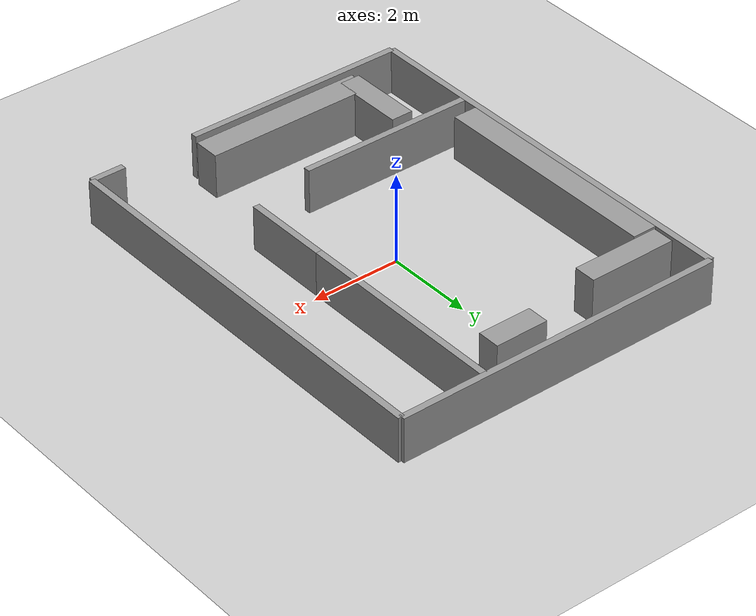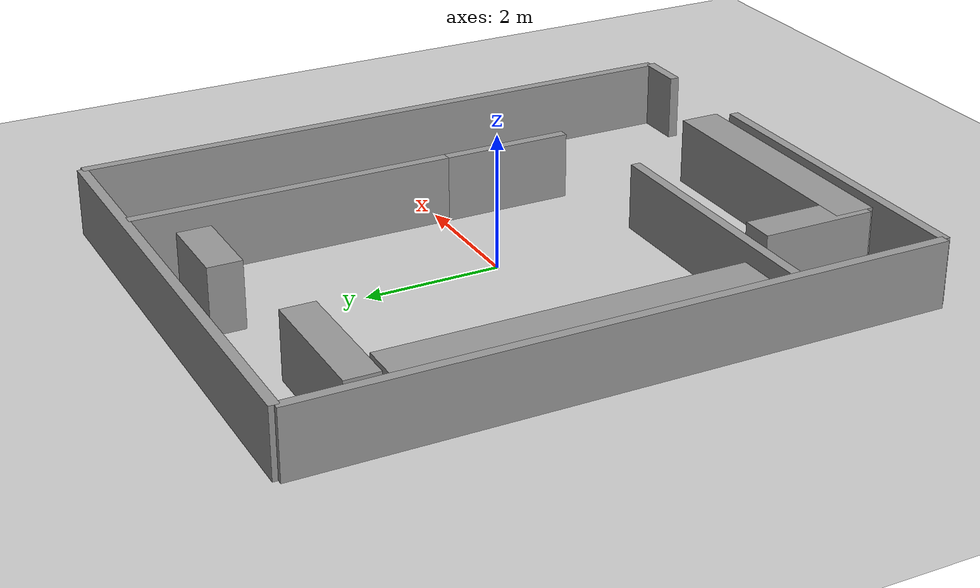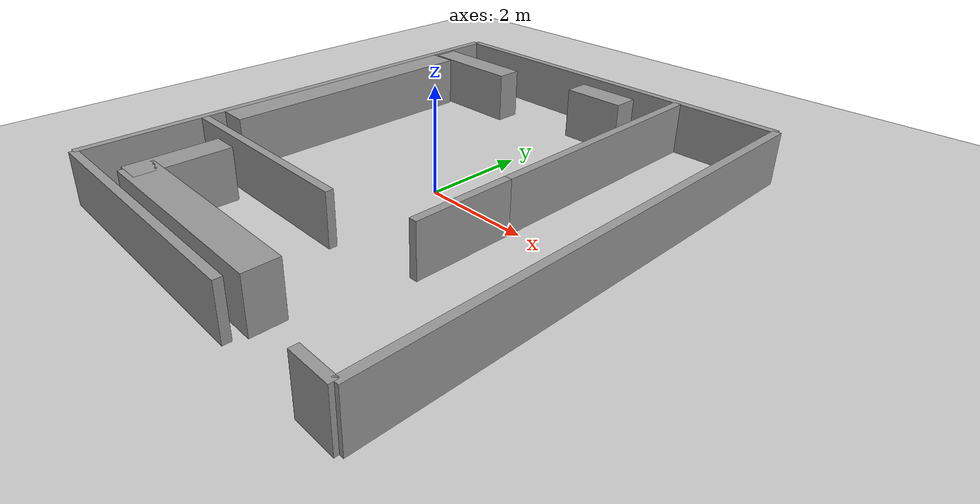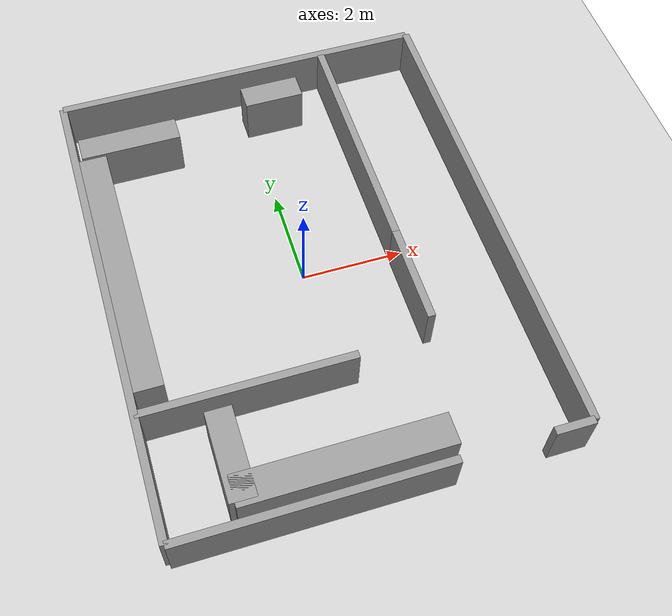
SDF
<?xml version="1.0" ?>
<sdf version="1.6">
  <world name="lab">
    <include><uri>model://sun</uri></include>
    <include><uri>model://ground_plane</uri></include>
    <physics name="default_physics" default="true" type="ode">
      <max_step_size>0.001</max_step_size><real_time_factor>1.0</real_time_factor><real_time_update_rate>1000</real_time_update_rate>
    </physics>
    <scene><ambient>0.4 0.4 0.4 1</ambient><background>0.7 0.7 0.7 1</background><shadows>false</shadows></scene>
    <model name="lab_obstacles"><static>true</static><link name="body">
      <collision name="col_0">
        <pose>0.0000 4.7500 0.5000 0 0 0</pose>
        <geometry><box><size>7.5000 0.1500 1.0000</size></box></geometry>
      </collision>
      <visual name="vis_0">
        <pose>0.0000 4.7500 0.5000 0 0 0</pose>
        <geometry><box><size>7.5000 0.1500 1.0000</size></box></geometry>
        <material><script><uri>file://media/materials/scripts/gazebo.material</uri><name>Gazebo/Grey</name></script></material>
      </visual>
      <collision name="col_1">
        <pose>-1.2250 -4.7500 0.5000 0 0 0</pose>
        <geometry><box><size>5.0500 0.1500 1.0000</size></box></geometry>
      </collision>
      <visual name="vis_1">
        <pose>-1.2250 -4.7500 0.5000 0 0 0</pose>
        <geometry><box><size>5.0500 0.1500 1.0000</size></box></geometry>
        <material><script><uri>file://media/materials/scripts/gazebo.material</uri><name>Gazebo/Grey</name></script></material>
      </visual>
      <collision name="col_2">
        <pose>3.3750 -4.7500 0.5000 0 0 0</pose>
        <geometry><box><size>0.7500 0.1500 1.0000</size></box></geometry>
      </collision>
      <visual name="vis_2">
        <pose>3.3750 -4.7500 0.5000 0 0 0</pose>
        <geometry><box><size>0.7500 0.1500 1.0000</size></box></geometry>
        <material><script><uri>file://media/materials/scripts/gazebo.material</uri><name>Gazebo/Grey</name></script></material>
      </visual>
      <collision name="col_3">
        <pose>3.7500 0.0000 0.5000 0 0 0</pose>
        <geometry><box><size>0.1500 9.5000 1.0000</size></box></geometry>
      </collision>
      <visual name="vis_3">
        <pose>3.7500 0.0000 0.5000 0 0 0</pose>
        <geometry><box><size>0.1500 9.5000 1.0000</size></box></geometry>
        <material><script><uri>file://media/materials/scripts/gazebo.material</uri><name>Gazebo/Grey</name></script></material>
      </visual>
      <collision name="col_4">
        <pose>-3.7500 0.0000 0.5000 0 0 0</pose>
        <geometry><box><size>0.1500 9.5000 1.0000</size></box></geometry>
      </collision>
      <visual name="vis_4">
        <pose>-3.7500 0.0000 0.5000 0 0 0</pose>
        <geometry><box><size>0.1500 9.5000 1.0000</size></box></geometry>
        <material><script><uri>file://media/materials/scripts/gazebo.material</uri><name>Gazebo/Grey</name></script></material>
      </visual>
      <collision name="col_5">
        <pose>-2.6000 3.6000 0.5000 0 0 0</pose>
        <geometry><box><size>2.0000 0.5000 1.0000</size></box></geometry>
      </collision>
      <visual name="vis_5">
        <pose>-2.6000 3.6000 0.5000 0 0 0</pose>
        <geometry><box><size>2.0000 0.5000 1.0000</size></box></geometry>
        <material><script><uri>file://media/materials/scripts/gazebo.material</uri><name>Gazebo/Grey</name></script></material>
      </visual>
      <collision name="col_6">
        <pose>0.5000 4.0000 0.5000 0 0 0</pose>
        <geometry><box><size>1.2000 0.5000 1.0000</size></box></geometry>
      </collision>
      <visual name="vis_6">
        <pose>0.5000 4.0000 0.5000 0 0 0</pose>
        <geometry><box><size>1.2000 0.5000 1.0000</size></box></geometry>
        <material><script><uri>file://media/materials/scripts/gazebo.material</uri><name>Gazebo/Grey</name></script></material>
      </visual>
      <collision name="col_7">
        <pose>1.8000 2.3000 0.5000 0 0 0</pose>
        <geometry><box><size>0.1500 4.8000 1.0000</size></box></geometry>
      </collision>
      <visual name="vis_7">
        <pose>1.8000 2.3000 0.5000 0 0 0</pose>
        <geometry><box><size>0.1500 4.8000 1.0000</size></box></geometry>
        <material><script><uri>file://media/materials/scripts/gazebo.material</uri><name>Gazebo/Grey</name></script></material>
      </visual>
      <collision name="col_8">
        <pose>1.8000 -1.0750 0.5000 0 0 0</pose>
        <geometry><box><size>0.1500 1.9500 1.0000</size></box></geometry>
      </collision>
      <visual name="vis_8">
        <pose>1.8000 -1.0750 0.5000 0 0 0</pose>
        <geometry><box><size>0.1500 1.9500 1.0000</size></box></geometry>
        <material><script><uri>file://media/materials/scripts/gazebo.material</uri><name>Gazebo/Grey</name></script></material>
      </visual>
      <collision name="col_9">
        <pose>-1.7250 -2.4000 0.5000 0 0 0</pose>
        <geometry><box><size>4.0500 0.1500 1.0000</size></box></geometry>
      </collision>
      <visual name="vis_9">
        <pose>-1.7250 -2.4000 0.5000 0 0 0</pose>
        <geometry><box><size>4.0500 0.1500 1.0000</size></box></geometry>
        <material><script><uri>file://media/materials/scripts/gazebo.material</uri><name>Gazebo/Grey</name></script></material>
      </visual>
      <collision name="col_10">
        <pose>-3.4000 0.6500 0.5000 0 0 0</pose>
        <geometry><box><size>0.5500 5.3000 1.0000</size></box></geometry>
      </collision>
      <visual name="vis_10">
        <pose>-3.4000 0.6500 0.5000 0 0 0</pose>
        <geometry><box><size>0.5500 5.3000 1.0000</size></box></geometry>
        <material><script><uri>file://media/materials/scripts/gazebo.material</uri><name>Gazebo/Grey</name></script></material>
      </visual>
      <collision name="col_11">
        <pose>-0.5500 -4.2000 0.5000 0 0 0</pose>
        <geometry><box><size>3.9000 0.6000 1.0000</size></box></geometry>
      </collision>
      <visual name="vis_11">
        <pose>-0.5500 -4.2000 0.5000 0 0 0</pose>
        <geometry><box><size>3.9000 0.6000 1.0000</size></box></geometry>
        <material><script><uri>file://media/materials/scripts/gazebo.material</uri><name>Gazebo/Grey</name></script></material>
      </visual>
      <collision name="col_12">
        <pose>-2.3500 -3.5500 0.5000 0 0 0</pose>
        <geometry><box><size>0.5000 1.7000 1.0000</size></box></geometry>
      </collision>
      <visual name="vis_12">
        <pose>-2.3500 -3.5500 0.5000 0 0 0</pose>
        <geometry><box><size>0.5000 1.7000 1.0000</size></box></geometry>
        <material><script><uri>file://media/materials/scripts/gazebo.material</uri><name>Gazebo/Grey</name></script></material>
      </visual>
    </link></model>
  </world>
</sdf>
